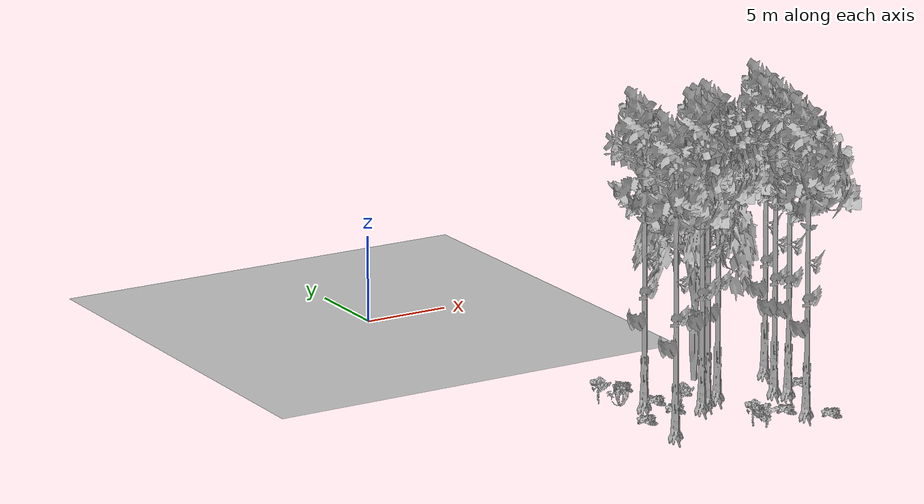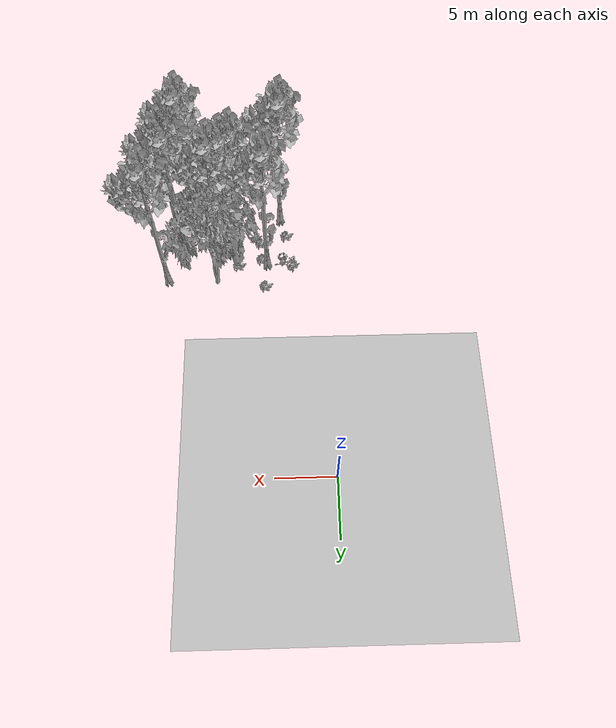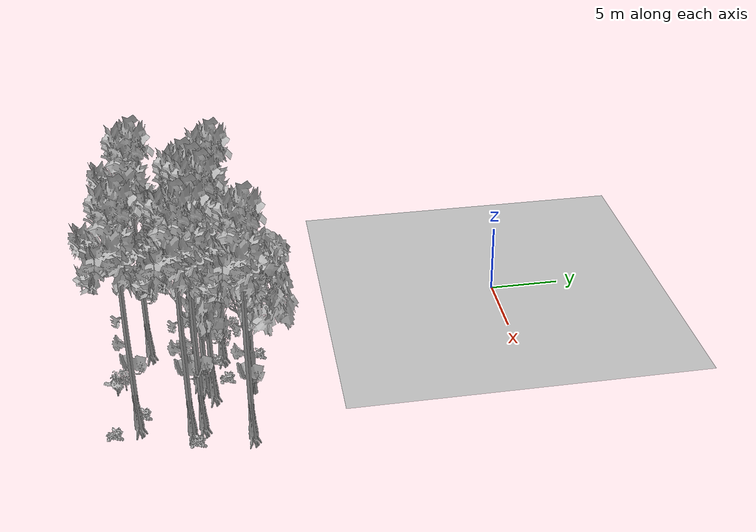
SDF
<sdf version="1.7">
 <world name="default">
  <model name="ground_plane">
   <static>1</static>
   <link name="link">
    <collision name="collision">
     <pose>-50 0 0 0 -0 0</pose>
     <geometry><plane><normal>0 0 1</normal><size>80 80</size></plane></geometry>
     <surface><contact><ode><min_depth>0.01</min_depth><max_vel>0</max_vel></ode></contact></surface>
    </collision>
    <visual name="grass">
     <cast_shadows>0</cast_shadows>
     <geometry>
      <mesh>
       <scale>0.46714285714285714 0.46714285714285714 0.1</scale>
       <uri>file://grass_plane/meshes/grass_plane.dae</uri>
      </mesh>
     </geometry>
    </visual>
   </link>
  </model>
  <model name="Tree 80">
   <static>1</static>
   <pose>12.890690509017062 -21.677723248501923 0 1.57079 -0 0</pose>
   <link name="link">
    <collision name="collision">
     <geometry><mesh><scale>3.5 5 3.5</scale><uri>model://tree_9/meshes/tree_9.obj</uri></mesh></geometry>
    </collision>
    <visual name="visual">
     <geometry><mesh><scale>3.5 5 3.5</scale><uri>model://tree_9/meshes/tree_9.obj</uri></mesh></geometry>
    </visual>
   </link>
  </model>
  <model name="Tree 99">
   <static>1</static>
   <pose>8.009868745086408 -21.913642765322372 0 1.57079 -0 0</pose>
   <link name="link">
    <collision name="collision">
     <geometry><mesh><scale>3.5 5 3.5</scale><uri>model://tree_9/meshes/tree_9.obj</uri></mesh></geometry>
    </collision>
    <visual name="visual">
     <geometry><mesh><scale>3.5 5 3.5</scale><uri>model://tree_9/meshes/tree_9.obj</uri></mesh></geometry>
    </visual>
   </link>
  </model>
  <model name="Tree 248">
   <static>1</static>
   <pose>8.729808195012886 -21.384558142682046 0 1.57079 -0 0</pose>
   <link name="link">
    <collision name="collision">
     <geometry><mesh><scale>3.5 5 3.5</scale><uri>model://tree_9/meshes/tree_9.obj</uri></mesh></geometry>
    </collision>
    <visual name="visual">
     <geometry><mesh><scale>3.5 5 3.5</scale><uri>model://tree_9/meshes/tree_9.obj</uri></mesh></geometry>
    </visual>
   </link>
  </model>
  <model name="Tree 297">
   <static>1</static>
   <pose>9.698102741570068 -20.904523576031437 0 1.57079 -0 0</pose>
   <link name="link">
    <collision name="collision">
     <geometry><mesh><scale>3.5 5 3.5</scale><uri>model://tree_9/meshes/tree_9.obj</uri></mesh></geometry>
    </collision>
    <visual name="visual">
     <geometry><mesh><scale>3.5 5 3.5</scale><uri>model://tree_9/meshes/tree_9.obj</uri></mesh></geometry>
    </visual>
   </link>
  </model>
  <model name="Tree 300">
   <static>1</static>
   <pose>12.203098729190422 -25.700434185124557 0 1.57079 -0 0</pose>
   <link name="link">
    <collision name="collision">
     <geometry><mesh><scale>3.5 5 3.5</scale><uri>model://tree_9/meshes/tree_9.obj</uri></mesh></geometry>
    </collision>
    <visual name="visual">
     <geometry><mesh><scale>3.5 5 3.5</scale><uri>model://tree_9/meshes/tree_9.obj</uri></mesh></geometry>
    </visual>
   </link>
  </model>
  <model name="Tree 355">
   <static>1</static>
   <pose>5.466262015017712 -20.165713468562217 0 1.57079 -0 0</pose>
   <link name="link">
    <collision name="collision">
     <geometry><mesh><scale>3.5 5 3.5</scale><uri>model://tree_9/meshes/tree_9.obj</uri></mesh></geometry>
    </collision>
    <visual name="visual">
     <geometry><mesh><scale>3.5 5 3.5</scale><uri>model://tree_9/meshes/tree_9.obj</uri></mesh></geometry>
    </visual>
   </link>
  </model>
  <model name="Tree 387">
   <static>1</static>
   <pose>9.811551012044916 -18.350456875459322 0 1.57079 -0 0</pose>
   <link name="link">
    <collision name="collision">
     <geometry><mesh><scale>3.5 5 3.5</scale><uri>model://tree_2/meshes/tree_2.obj</uri></mesh></geometry>
    </collision>
    <visual name="visual">
     <geometry><mesh><scale>3.5 5 3.5</scale><uri>model://tree_2/meshes/tree_2.obj</uri></mesh></geometry>
    </visual>
   </link>
  </model>
  <model name="Tree 410">
   <static>1</static>
   <pose>14.342325277071055 -18.661482809388417 0 1.57079 -0 0</pose>
   <link name="link">
    <collision name="collision">
     <geometry><mesh><scale>3.5 5 3.5</scale><uri>model://tree_9/meshes/tree_9.obj</uri></mesh></geometry>
    </collision>
    <visual name="visual">
     <geometry><mesh><scale>3.5 5 3.5</scale><uri>model://tree_9/meshes/tree_9.obj</uri></mesh></geometry>
    </visual>
   </link>
  </model>
  <model name="Tree 438">
   <static>1</static>
   <pose>4.255563081976142 -25.03203148796168 0 1.57079 -0 0</pose>
   <link name="link">
    <collision name="collision">
     <geometry><mesh><scale>3.5 5 3.5</scale><uri>model://tree_9/meshes/tree_9.obj</uri></mesh></geometry>
    </collision>
    <visual name="visual">
     <geometry><mesh><scale>3.5 5 3.5</scale><uri>model://tree_9/meshes/tree_9.obj</uri></mesh></geometry>
    </visual>
   </link>
  </model>
  <model name="Tree 597">
   <static>1</static>
   <pose>13.314344936870121 -22.402354479734356 0 1.57079 -0 0</pose>
   <link name="link">
    <collision name="collision">
     <geometry><mesh><scale>3.5 5 3.5</scale><uri>model://tree_9/meshes/tree_9.obj</uri></mesh></geometry>
    </collision>
    <visual name="visual">
     <geometry><mesh><scale>3.5 5 3.5</scale><uri>model://tree_9/meshes/tree_9.obj</uri></mesh></geometry>
    </visual>
   </link>
  </model>
  <model name="Bush 20">
   <static>1</static>
   <pose>5.894785412721795 -20.62483602313233 0 1.57079 -0 0</pose>
   <link name="link">
    <collision name="collision">
     <geometry><mesh><scale>2 2 2</scale><uri>model://bush_2/meshes/bush_2.obj</uri></mesh></geometry>
     <surface><contact><collide_without_contact>false</collide_without_contact></contact></surface>
    </collision>
    <visual name="visual">
     <geometry><mesh><scale>2 2 2</scale><uri>model://bush_2/meshes/bush_2.obj</uri></mesh></geometry>
    </visual>
   </link>
  </model>
  <model name="Bush 85">
   <static>1</static>
   <pose>6.019111235398057 -22.347141972742108 0 1.57079 -0 0</pose>
   <link name="link">
    <collision name="collision">
     <geometry><mesh><scale>2 2 2</scale><uri>model://bush_2/meshes/bush_2.obj</uri></mesh></geometry>
     <surface><contact><collide_without_contact>false</collide_without_contact></contact></surface>
    </collision>
    <visual name="visual">
     <geometry><mesh><scale>2 2 2</scale><uri>model://bush_2/meshes/bush_2.obj</uri></mesh></geometry>
    </visual>
   </link>
  </model>
  <model name="Bush 252">
   <static>1</static>
   <pose>11.05024736102959 -25.468837525013733 0 1.57079 -0 0</pose>
   <link name="link">
    <collision name="collision">
     <geometry><mesh><scale>2 2 2</scale><uri>model://bush_2/meshes/bush_2.obj</uri></mesh></geometry>
     <surface><contact><collide_without_contact>false</collide_without_contact></contact></surface>
    </collision>
    <visual name="visual">
     <geometry><mesh><scale>2 2 2</scale><uri>model://bush_2/meshes/bush_2.obj</uri></mesh></geometry>
    </visual>
   </link>
  </model>
  <model name="Bush 318">
   <static>1</static>
   <pose>8.182463786704496 -26.57660648046578 0 1.57079 -0 0</pose>
   <link name="link">
    <collision name="collision">
     <geometry><mesh><scale>2 2 2</scale><uri>model://bush_5/meshes/bush_5.obj</uri></mesh></geometry>
     <surface><contact><collide_without_contact>false</collide_without_contact></contact></surface>
    </collision>
    <visual name="visual">
     <geometry><mesh><scale>2 2 2</scale><uri>model://bush_5/meshes/bush_5.obj</uri></mesh></geometry>
    </visual>
   </link>
  </model>
  <model name="Bush 338">
   <static>1</static>
   <pose>3.9979542955469825 -20.05926895656107 0 1.57079 -0 0</pose>
   <link name="link">
    <collision name="collision">
     <geometry><mesh><scale>2 2 2</scale><uri>model://bush_4/meshes/bush_4.obj</uri></mesh></geometry>
     <surface><contact><collide_without_contact>false</collide_without_contact></contact></surface>
    </collision>
    <visual name="visual">
     <geometry><mesh><scale>2 2 2</scale><uri>model://bush_4/meshes/bush_4.obj</uri></mesh></geometry>
    </visual>
   </link>
  </model>
  <model name="Bush 346">
   <static>1</static>
   <pose>6.519173262650362 -22.22298112461651 0 1.57079 -0 0</pose>
   <link name="link">
    <collision name="collision">
     <geometry><mesh><scale>2 2 2</scale><uri>model://bush_5/meshes/bush_5.obj</uri></mesh></geometry>
     <surface><contact><collide_without_contact>false</collide_without_contact></contact></surface>
    </collision>
    <visual name="visual">
     <geometry><mesh><scale>2 2 2</scale><uri>model://bush_5/meshes/bush_5.obj</uri></mesh></geometry>
    </visual>
   </link>
  </model>
  <model name="Bush 361">
   <static>1</static>
   <pose>8.648317359085716 -27.119798760929392 0 1.57079 -0 0</pose>
   <link name="link">
    <collision name="collision">
     <geometry><mesh><scale>2 2 2</scale><uri>model://bush_0/meshes/bush_0.obj</uri></mesh></geometry>
     <surface><contact><collide_without_contact>false</collide_without_contact></contact></surface>
    </collision>
    <visual name="visual">
     <geometry><mesh><scale>2 2 2</scale><uri>model://bush_0/meshes/bush_0.obj</uri></mesh></geometry>
    </visual>
   </link>
  </model>
  <model name="Bush 389">
   <static>1</static>
   <pose>12.78311451329342 -27.224999350473098 0 1.57079 -0 0</pose>
   <link name="link">
    <collision name="collision">
     <geometry><mesh><scale>2 2 2</scale><uri>model://bush_2/meshes/bush_2.obj</uri></mesh></geometry>
     <surface><contact><collide_without_contact>false</collide_without_contact></contact></surface>
    </collision>
    <visual name="visual">
     <geometry><mesh><scale>2 2 2</scale><uri>model://bush_2/meshes/bush_2.obj</uri></mesh></geometry>
    </visual>
   </link>
  </model>
  <model name="Bush 479">
   <static>1</static>
   <pose>3.1905792142806106 -19.184422618269082 0 1.57079 -0 0</pose>
   <link name="link">
    <collision name="collision">
     <geometry><mesh><scale>2 2 2</scale><uri>model://bush_5/meshes/bush_5.obj</uri></mesh></geometry>
     <surface><contact><collide_without_contact>false</collide_without_contact></contact></surface>
    </collision>
    <visual name="visual">
     <geometry><mesh><scale>2 2 2</scale><uri>model://bush_5/meshes/bush_5.obj</uri></mesh></geometry>
    </visual>
   </link>
  </model>
  <model name="Bush 484">
   <static>1</static>
   <pose>3.7047578861967096 -23.118060219481535 0 1.57079 -0 0</pose>
   <link name="link">
    <collision name="collision">
     <geometry><mesh><scale>2 2 2</scale><uri>model://bush_2/meshes/bush_2.obj</uri></mesh></geometry>
     <surface><contact><collide_without_contact>false</collide_without_contact></contact></surface>
    </collision>
    <visual name="visual">
     <geometry><mesh><scale>2 2 2</scale><uri>model://bush_2/meshes/bush_2.obj</uri></mesh></geometry>
    </visual>
   </link>
  </model>
  <model name="Bush 490">
   <static>1</static>
   <pose>8.015120766653254 -19.983359799332085 0 1.57079 -0 0</pose>
   <link name="link">
    <collision name="collision">
     <geometry><mesh><scale>2 2 2</scale><uri>model://bush_2/meshes/bush_2.obj</uri></mesh></geometry>
     <surface><contact><collide_without_contact>false</collide_without_contact></contact></surface>
    </collision>
    <visual name="visual">
     <geometry><mesh><scale>2 2 2</scale><uri>model://bush_2/meshes/bush_2.obj</uri></mesh></geometry>
    </visual>
   </link>
  </model>
  <model name="Bush 595">
   <static>1</static>
   <pose>14.353370900993895 -22.109790356290357 0 1.57079 -0 0</pose>
   <link name="link">
    <collision name="collision">
     <geometry><mesh><scale>2 2 2</scale><uri>model://bush_2/meshes/bush_2.obj</uri></mesh></geometry>
     <surface><contact><collide_without_contact>false</collide_without_contact></contact></surface>
    </collision>
    <visual name="visual">
     <geometry><mesh><scale>2 2 2</scale><uri>model://bush_2/meshes/bush_2.obj</uri></mesh></geometry>
    </visual>
   </link>
  </model>
  <model name="Bush 598">
   <static>1</static>
   <pose>5.611136449028898 -17.7814660376593 0 1.57079 -0 0</pose>
   <link name="link">
    <collision name="collision">
     <geometry><mesh><scale>2 2 2</scale><uri>model://bush_2/meshes/bush_2.obj</uri></mesh></geometry>
     <surface><contact><collide_without_contact>false</collide_without_contact></contact></surface>
    </collision>
    <visual name="visual">
     <geometry><mesh><scale>2 2 2</scale><uri>model://bush_2/meshes/bush_2.obj</uri></mesh></geometry>
    </visual>
   </link>
  </model>
 </world>
</sdf>
